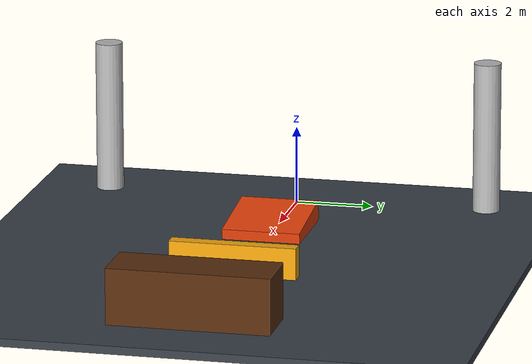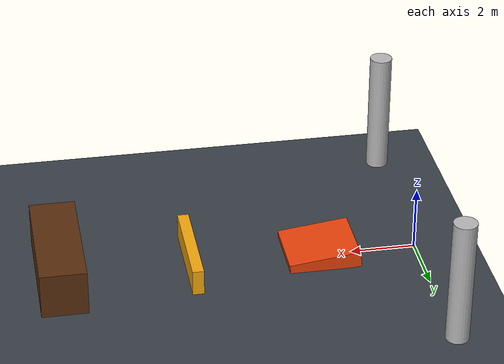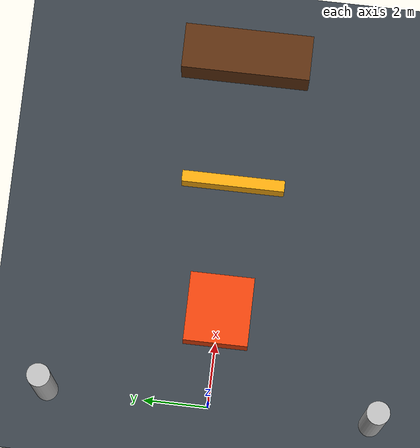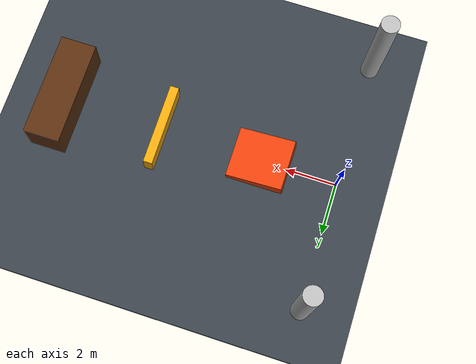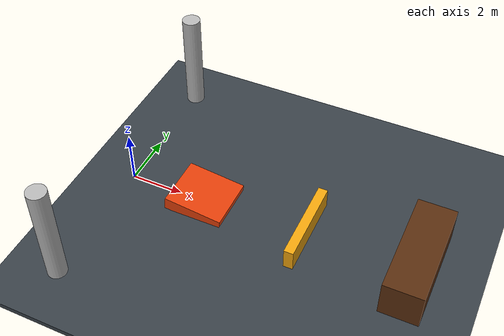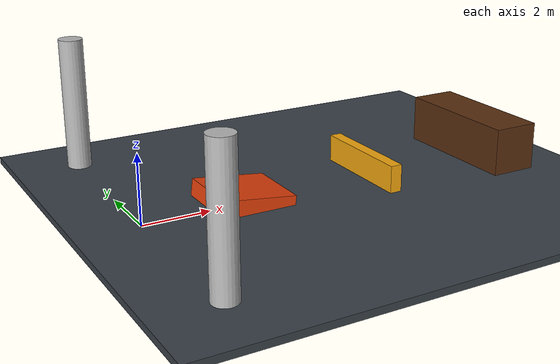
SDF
<?xml version="1.0"?>
<!-- Monde Gazebo indépendant du modèle robot. -->
<sdf version="1.6">
  <!-- Nom global de la scène industrielle. -->
  <world name="big_factory">
    <!-- Sol et lumière standards de Gazebo. -->
    <include><uri>model://ground_plane</uri></include>
    <include><uri>model://sun</uri></include>

    <!-- Paramètres physiques stables pour la simulation. -->
    <physics type="ode">
      <!-- Petit pas de calcul pour améliorer les contacts et le saut. -->
      <max_step_size>0.001</max_step_size>
      <!-- Fréquence de mise à jour temps réel. -->
      <real_time_update_rate>1000</real_time_update_rate>
      <!-- Gravité terrestre. -->
      <gravity>0 0 -9.81</gravity>
    </physics>

    <!-- Éclairage et arrière-plan de l'usine. -->
    <scene>
      <ambient>0.16 0.16 0.16 1</ambient>
      <background>0.03 0.04 0.06 1</background>
      <shadows>true</shadows>
    </scene>

    <!-- Dalle industrielle principale de 40 mètres par 24 mètres. -->
    <model name="factory_floor">
      <static>true</static>
      <link name="floor">
        <collision><geometry><box><size>40 24 0.2</size></box></geometry></collision>
        <visual>
          <geometry><box><size>40 24 0.2</size></box></geometry>
          <material><ambient>0.22 0.25 0.28 1</ambient></material>
        </visual>
      </link>
    </model>

    <!-- Rampe orange utilisée pour tester le saut. -->
    <model name="jump_ramp">
      <static>true</static>
      <pose>3 0 0.25 0 0.12 0</pose>
      <link name="ramp">
        <collision><geometry><box><size>2.2 2.0 0.5</size></box></geometry></collision>
        <visual>
          <geometry><box><size>2.2 2.0 0.5</size></box></geometry>
          <material><ambient>0.9 0.25 0.04 1</ambient></material>
        </visual>
      </link>
    </model>

    <!-- Barrière jaune détectable par le lidar. -->
    <model name="safety_barrier">
      <static>true</static>
      <pose>7 0 0.45 0 0 0</pose>
      <link name="barrier">
        <collision><geometry><box><size>0.35 3.2 0.9</size></box></geometry></collision>
        <visual>
          <geometry><box><size>0.35 3.2 0.9</size></box></geometry>
          <material><ambient>0.95 0.65 0.05 1</ambient></material>
        </visual>
      </link>
    </model>

    <!-- Rangée de caisses brunes simulant un stockage industriel. -->
    <model name="crate_row">
      <static>true</static>
      <pose>11 0 0.75 0 0 0</pose>
      <link name="crate">
        <collision><geometry><box><size>1.4 4.0 1.5</size></box></geometry></collision>
        <visual>
          <geometry><box><size>1.4 4.0 1.5</size></box></geometry>
          <material><ambient>0.35 0.18 0.06 1</ambient></material>
        </visual>
      </link>
    </model>

    <!-- Pilier industriel côté gauche. -->
    <model name="pillar_a">
      <static>true</static>
      <pose>0 5 2 0 0 0</pose>
      <link name="p">
        <collision><geometry><cylinder><radius>0.35</radius><length>4</length></cylinder></geometry></collision>
        <visual><geometry><cylinder><radius>0.35</radius><length>4</length></cylinder></geometry></visual>
      </link>
    </model>

    <!-- Pilier industriel côté droit. -->
    <model name="pillar_b">
      <static>true</static>
      <pose>0 -5 2 0 0 0</pose>
      <link name="p">
        <collision><geometry><cylinder><radius>0.35</radius><length>4</length></cylinder></geometry></collision>
        <visual><geometry><cylinder><radius>0.35</radius><length>4</length></cylinder></geometry></visual>
      </link>
    </model>
  </world>
</sdf>
